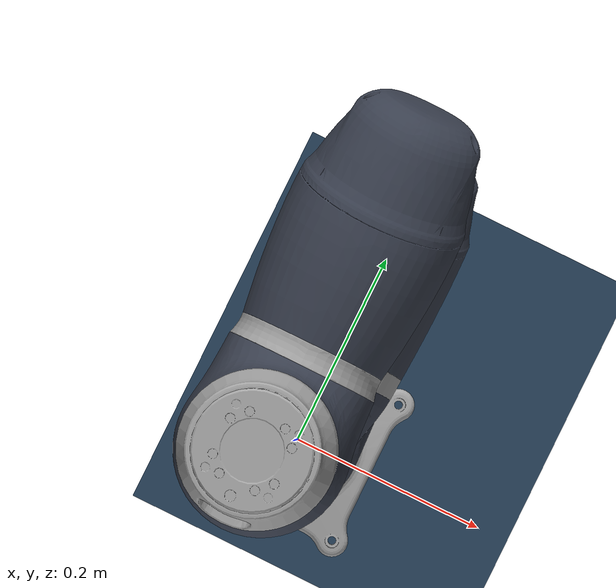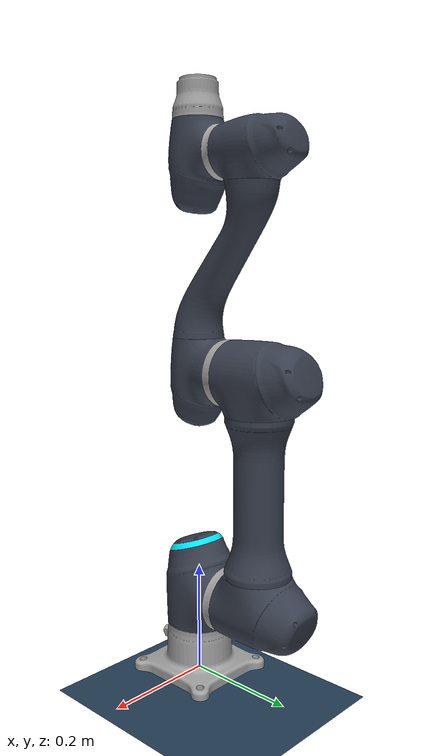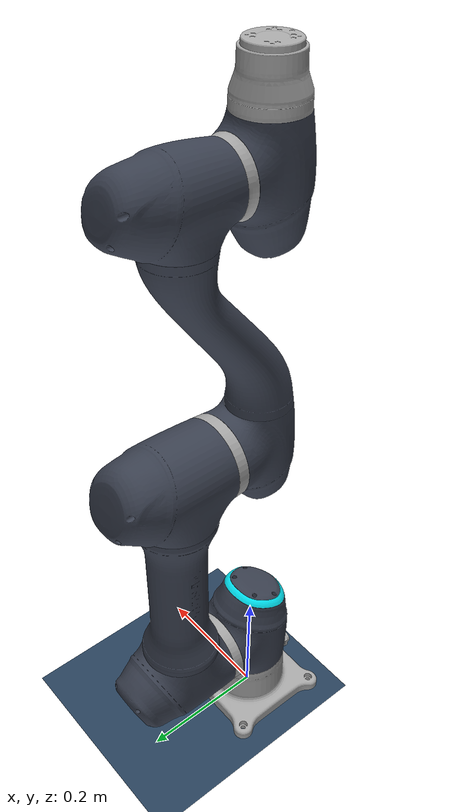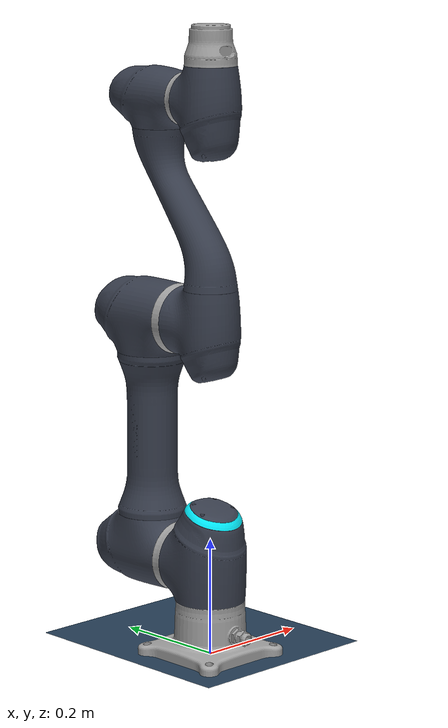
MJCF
<?xml version='1.0' encoding='utf-8'?>
<mujoco model="a0509 scene">
  <include file="a0509.xml" />
  <compiler angle="radian" meshdir="../" />

  <statistic center="0.3 0 0.4" extent="1" />

  <visual>
    <headlight diffuse="0.6 0.6 0.6" ambient="0.3 0.3 0.3" specular="0 0 0" />
    <rgba haze="0.15 0.25 0.35 1" />
    <global azimuth="120" elevation="-20" />
  </visual>

  <asset>
    <texture type="skybox" builtin="gradient" rgb1="0.3 0.5 0.7" rgb2="0 0 0" width="512" height="3072" />
    <texture type="2d" name="groundplane" builtin="checker" mark="edge" rgb1="0.2 0.3 0.4" rgb2="0.1 0.2 0.3" markrgb="0.8 0.8 0.8" width="300" height="300" />
    <material name="groundplane" texture="groundplane" texuniform="true" texrepeat="5 5" reflectance="0.2" />
  </asset>

  <worldbody>
    <light pos="0 0 1.5" dir="0 0 -1" directional="true" />
    <geom name="floor" size="0 0 0.05" type="plane" material="groundplane" />
  </worldbody>

</mujoco>

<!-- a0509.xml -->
<mujoco model="a0509">

  <asset>
    <mesh name="A0509_0_0" file="a0509/assets/A0509_0_0.stl" scale="0.001 0.001 0.001"/>
    <mesh name="A0509_1_0" file="a0509/assets/A0509_1_0.stl" scale="0.001 0.001 0.001"/>
    <mesh name="A0509_1_1" file="a0509/assets/A0509_1_1.stl" scale="0.001 0.001 0.001"/>
    <mesh name="A0509_1_2" file="a0509/assets/A0509_1_2.stl" scale="0.001 0.001 0.001"/>
    <mesh name="A0509_2_0" file="a0509/assets/A0509_2_0.stl" scale="0.001 0.001 0.001"/>
    <mesh name="A0509_2_1" file="a0509/assets/A0509_2_1.stl" scale="0.001 0.001 0.001"/>
    <mesh name="A0509_2_2" file="a0509/assets/A0509_2_2.stl" scale="0.001 0.001 0.001"/>
    <mesh name="A0509_3_0" file="a0509/assets/A0509_3_0.stl" scale="0.001 0.001 0.001"/>
    <mesh name="A0509_3_1" file="a0509/assets/A0509_3_1.stl" scale="0.001 0.001 0.001"/>
    <mesh name="A0509_4_0" file="a0509/assets/A0509_4_0.stl" scale="0.001 0.001 0.001"/>
    <mesh name="A0509_4_1" file="a0509/assets/A0509_4_1.stl" scale="0.001 0.001 0.001"/>
    <mesh name="A0509_5_0" file="a0509/assets/A0509_5_0.stl" scale="0.001 0.001 0.001"/>
    <mesh name="A0509_5_1" file="a0509/assets/A0509_5_1.stl" scale="0.001 0.001 0.001"/>
    <mesh name="A0509_6_0" file="a0509/assets/A0509_6_0.stl" scale="0.001 0.001 0.001"/>

    <material name="blue" rgba="0.227 0.251 0.31 1"/>
    <material name="metal" rgba="0.65 0.65 0.65 1"/>
    <material name="sky_blue" rgba="0.016 0.933 0.992 1.0"/>
  </asset>

  <worldbody>
    <geom type="mesh" contype="1" conaffinity="1" group="1" density="0" mesh="A0509_0_0" material="metal"/>
    <body name="link_1" pos="0 0 0.1560">
      <inertial pos="-6.9e-05 0.024423 -0.007375" quat="0.626042 0.779776 -0.00329495 0.00321293" mass="3.715" diaginertia="0.0189902 0.017021 0.0135698"/>
      <joint name="joint_1" pos="0 0 0" axis="0 0 1" range="-6.2832 6.2832" actuatorfrcrange="-194 194" damping="800"/>
      <geom type="mesh" contype="1" conaffinity="1" group="1" density="0" mesh="A0509_1_0" material="metal"/>
      <geom type="mesh" contype="1" conaffinity="1" group="1" density="0" mesh="A0509_1_1" material="blue"/>
      <geom type="mesh" contype="1" conaffinity="1" group="1" density="0" mesh="A0509_1_2" material="sky_blue"/>
      <body name="link_2" quat="0.499898 -0.500102 -0.5 -0.5">
        <inertial pos="0.20449 0 0.13271" quat="0.499405 0.500811 0.499197 0.500585" mass="6.837" diaginertia="0.25627 0.25442 0.019399"/>
        <joint name="joint_2" pos="0 0 0" axis="0 0 1" range="-6.2832 6.2832" actuatorfrcrange="-194 194" damping="800"/>
        <geom type="mesh" contype="1" conaffinity="1" group="1" density="0" mesh="A0509_2_0" material="blue"/>
        <geom type="mesh" contype="1" conaffinity="1" group="1" density="0" mesh="A0509_2_1" material="blue"/>
        <geom type="mesh" contype="1" conaffinity="1" group="1" density="0" mesh="A0509_2_2" material="blue"/>
        <body name="link_3" pos="0.409 0 0" quat="0.707035 0 0 0.707179">
          <inertial pos="7.1e-05 -0.005123 0.033009" quat="0.704152 -0.0338098 0.031631 0.708538" mass="2.769" diaginertia="0.013912 0.012526 0.00877466"/>
          <joint name="joint_3" pos="0 0 0" axis="0 0 1" range="-2.7925 2.7925" actuatorfrcrange="-163 163" damping="800"/>
          <geom type="mesh" contype="1" conaffinity="1" group="1" density="0" mesh="A0509_3_0" material="metal"/>
          <geom type="mesh" contype="1" conaffinity="1" group="1" density="0" mesh="A0509_3_1" material="blue"/>
          <body name="link_4" pos="0 -0.367 0" quat="0.707035 0.707179 0 0">
            <inertial pos="-8.6e-05 0.086348 -0.086031" quat="0.983575 -0.180483 0.000213119 0.00238692" mass="2.679" diaginertia="0.0560681 0.0528175 0.00763342"/>
            <joint name="joint_4" pos="0 0 0" axis="0 0 1" range="-6.2832 6.2832" actuatorfrcrange="-50 50" damping="600"/>
            <geom type="mesh" contype="1" conaffinity="1" group="1" density="0" mesh="A0509_4_0" material="blue"/>
            <geom type="mesh" contype="1" conaffinity="1" group="1" density="0" mesh="A0509_4_1" material="blue"/>
            <body name="link_5" quat="0.707035 -0.707179 0 0">
              <inertial pos="9.1e-05 -0.006457 0.015434" quat="0.480275 0.522032 -0.522242 0.473372" mass="2.051" diaginertia="0.0104696 0.00907878 0.00845556"/>
              <joint name="joint_5" pos="0 0 0" axis="0 0 1" range="-6.2832 6.2832" actuatorfrcrange="-50 50" damping="600"/>
              <geom type="mesh" contype="1" conaffinity="1" group="1" density="0" mesh="A0509_5_0" material="metal"/>
              <geom type="mesh" contype="1" conaffinity="1" group="1" density="0" mesh="A0509_5_1" material="blue"/>
              <body name="link_6" pos="0 -0.124 0" quat="0.707035 0.707179 0 0">
                <inertial pos="-2.2e-05 -7e-06 -0.051746" quat="0.999989 0.00141825 -0.000201627 0.0044558" mass="0.773" diaginertia="0.00874837 0.00785656 0.00444517"/>
                <joint name="joint_6" pos="0 0 0" axis="0 0 1" range="-6.2832 6.2832" actuatorfrcrange="-50 50" damping="600"/>
                <geom type="mesh" contype="1" conaffinity="1" group="1" density="0" mesh="A0509_6_0" material="metal"/>
              </body>
            </body>
          </body>
        </body>
      </body>
    </body>
  </worldbody>

	<actuator>
		<position joint="joint_1" kp="10" kv="1" ctrlrange="-6.2832 6.2832"/>
		<position joint="joint_2" kp="10" kv="1" ctrlrange="-6.2832 6.2832"/>
		<position joint="joint_3" kp="10" kv="1" ctrlrange="-2.7925 2.7925"/>
		<position joint="joint_4" kp="10" kv="1" ctrlrange="-6.2832 6.2832"/>
		<position joint="joint_5" kp="10" kv="1" ctrlrange="-6.2832 6.2832"/>
		<position joint="joint_6" kp="10" kv="1" ctrlrange="-6.2832 6.2832"/>
	</actuator>

</mujoco>
